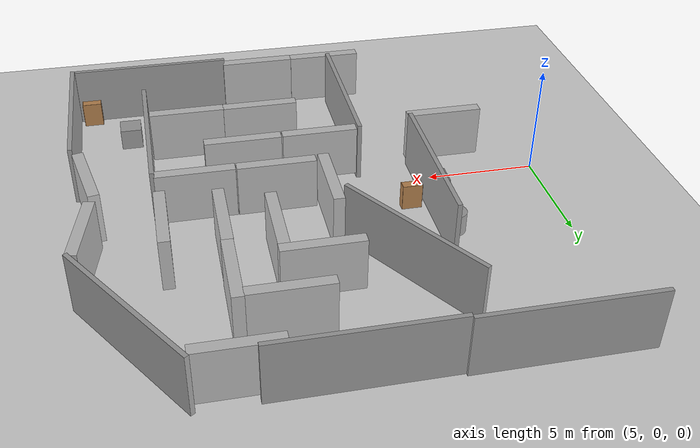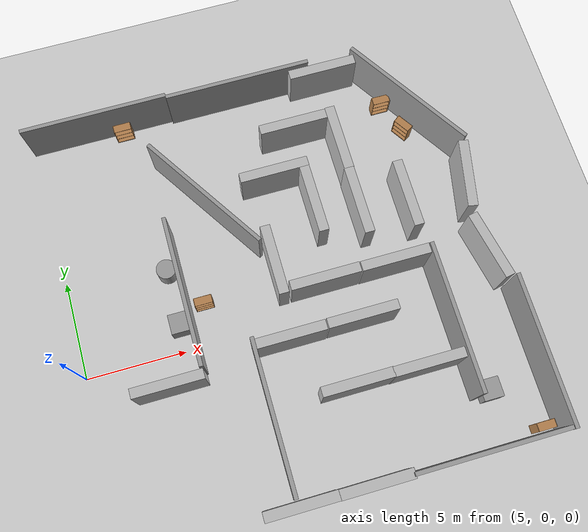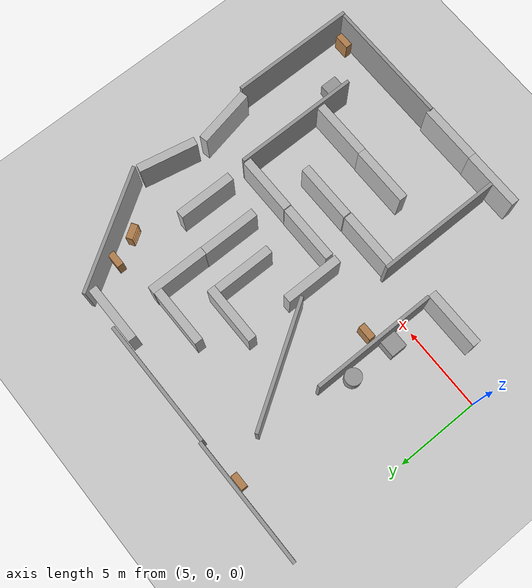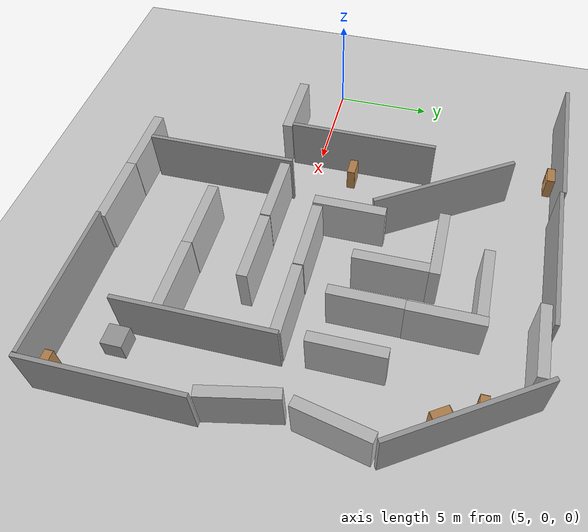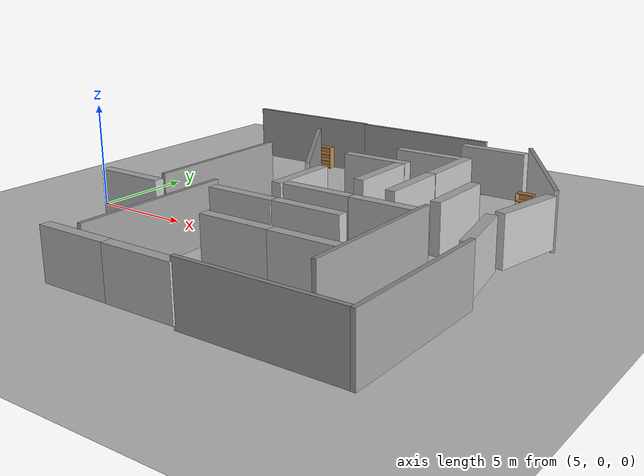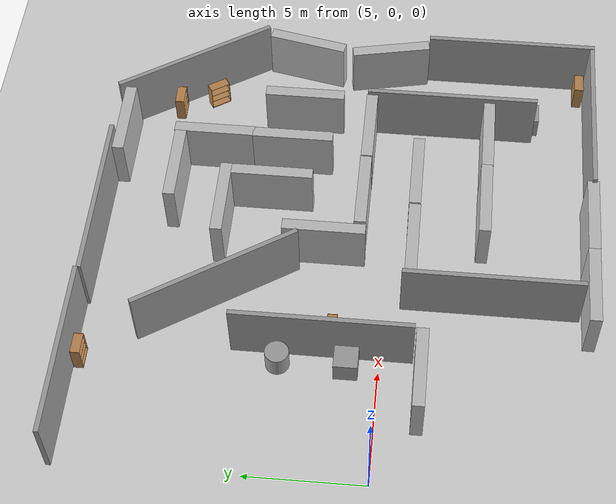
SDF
<sdf version="1.6">
 <world name="default">
  <model name="ground_plane">
   <static>1</static>
   <link name="link">
    <collision name="collision">
     <geometry><plane><normal>0 0 1</normal><size>100 100</size></plane></geometry>
     <surface><friction><ode><mu>100</mu><mu2>50</mu2></ode></friction></surface>
    </collision>
    <visual name="visual">
     <cast_shadows>0</cast_shadows>
     <geometry><plane><normal>0 0 1</normal><size>100 100</size></plane></geometry>
     <material>
      <script><uri>file://media/materials/scripts/gazebo.material</uri><name>Gazebo/Grey</name></script>
     </material>
    </visual>
   </link>
  </model>
  <model name="grey_wall_2">
   <static>1</static>
   <link name="link">
    <pose>0 0 1.4 0 -0 0</pose>
    <collision name="collision"><geometry><box><size>7.5 0.2 2.8</size></box></geometry></collision>
    <visual name="visual">
     <cast_shadows>0</cast_shadows>
     <geometry><box><size>7.5 0.2 2.8</size></box></geometry>
     <material>
      <script>
       <uri>model://grey_wall/materials/scripts</uri>
       <uri>model://grey_wall/materials/textures</uri>
       <name>vrc/grey_wall</name>
      </script>
     </material>
    </visual>
   </link>
   <pose>10.7049 2.36121 0 0 -0 1.57</pose>
  </model>
  <model name="unit_cylinder_0_0">
   <pose>10.1063 4.12187 0.5 0 -0 1.1e-05</pose>
   <link name="link">
    <inertial>
     <mass>1</mass>
     <inertia><ixx>0.145833</ixx><ixy>0</ixy><ixz>0</ixz><iyy>0.145833</iyy><iyz>0</iyz><izz>0.125</izz></inertia>
    </inertial>
    <collision name="collision">
     <geometry><cylinder><radius>0.5</radius><length>1</length></cylinder></geometry>
    </collision>
    <visual name="visual">
     <geometry><cylinder><radius>0.5</radius><length>1</length></cylinder></geometry>
     <material>
      <script><name>Gazebo/Grey</name><uri>file://media/materials/scripts/gazebo.material</uri></script>
     </material>
    </visual>
   </link>
  </model>
  <model name="unit_box_1_0">
   <pose>10.1038 1.31079 0.499995 0 1e-05 -0.000339</pose>
   <link name="link">
    <inertial>
     <mass>1</mass>
     <inertia>
      <ixx>0.166667</ixx>
      <ixy>0</ixy>
      <ixz>0</ixz>
      <iyy>0.166667</iyy>
      <iyz>0</iyz>
      <izz>0.166667</izz>
     </inertia>
    </inertial>
    <collision name="collision"><geometry><box><size>1 1 1</size></box></geometry></collision>
    <visual name="visual">
     <geometry><box><size>1 1 1</size></box></geometry>
     <material>
      <script><name>Gazebo/Grey</name><uri>file://media/materials/scripts/gazebo.material</uri></script>
     </material>
    </visual>
   </link>
  </model>
  <model name="mywall1_0_clone_clone">
   <static>1</static>
   <link name="link">
    <pose>0 0 1.4 0 -0 0</pose>
    <collision name="collision"><geometry><box><size>3.5 0.5 2.4</size></box></geometry></collision>
    <visual name="visual">
     <cast_shadows>0</cast_shadows>
     <geometry><box><size>3.5 0.5 2.4</size></box></geometry>
     <material>
      <script>
       <uri>model://mywall1/materials/scripts</uri>
       <uri>model://mywall1/materials/textures</uri>
       <name>vrc/mywall1</name>
      </script>
     </material>
    </visual>
   </link>
   <pose>13.4228 -8.52031 0 0 -0 0</pose>
  </model>
  <model name="grey_wall_5_clone">
   <static>1</static>
   <link name="link">
    <pose>0 0 1.4 0 -0 0</pose>
    <collision name="collision"><geometry><box><size>7.5 0.2 2.8</size></box></geometry></collision>
    <visual name="visual">
     <cast_shadows>0</cast_shadows>
     <geometry><box><size>7.5 0.2 2.8</size></box></geometry>
     <material>
      <script>
       <uri>model://grey_wall/materials/scripts</uri>
       <uri>model://grey_wall/materials/textures</uri>
       <name>vrc/grey_wall</name>
      </script>
     </material>
    </visual>
   </link>
   <pose>22.3475 -8.58584 0 0 -0 0</pose>
  </model>
  <model name="mywall0_2">
   <static>1</static>
   <link name="link">
    <pose>0 0 1.4 0 -0 0</pose>
    <collision name="collision"><geometry><box><size>3.5 0.5 2.4</size></box></geometry></collision>
    <visual name="visual">
     <cast_shadows>0</cast_shadows>
     <geometry><box><size>3.5 0.5 2.4</size></box></geometry>
     <material>
      <script>
       <uri>model://mywall0/materials/scripts</uri>
       <uri>model://mywall0/materials/textures</uri>
       <name>vrc/mywall0</name>
      </script>
     </material>
    </visual>
   </link>
   <pose>8.99712 -1.69173 0 0 -0 0</pose>
  </model>
  <model name="mywall0_6">
   <static>1</static>
   <link name="link">
    <pose>0 0 1.4 0 -0 0</pose>
    <collision name="collision"><geometry><box><size>3.5 0.5 2.4</size></box></geometry></collision>
    <visual name="visual">
     <cast_shadows>0</cast_shadows>
     <geometry><box><size>3.5 0.5 2.4</size></box></geometry>
     <material>
      <script>
       <uri>model://mywall0/materials/scripts</uri>
       <uri>model://mywall0/materials/textures</uri>
       <name>vrc/mywall0</name>
      </script>
     </material>
    </visual>
   </link>
   <pose>16.9181 -8.53522 0 0 -0 0</pose>
  </model>
  <model name="grey_wall_2_clone">
   <static>1</static>
   <link name="link">
    <pose>0 0 1.4 0 -0 0</pose>
    <collision name="collision"><geometry><box><size>7.5 0.2 2.8</size></box></geometry></collision>
    <visual name="visual">
     <cast_shadows>0</cast_shadows>
     <geometry><box><size>7.5 0.2 2.8</size></box></geometry>
     <material>
      <script>
       <uri>model://grey_wall/materials/scripts</uri>
       <uri>model://grey_wall/materials/textures</uri>
       <name>vrc/grey_wall</name>
      </script>
     </material>
    </visual>
   </link>
   <pose>13.2765 -4.44071 0 0 -0 1.57</pose>
  </model>
  <model name="grey_wall_0_clone">
   <static>1</static>
   <link name="link">
    <pose>0 0 1.4 0 -0 0</pose>
    <collision name="collision"><geometry><box><size>7.5 0.2 2.8</size></box></geometry></collision>
    <visual name="visual">
     <cast_shadows>0</cast_shadows>
     <geometry><box><size>7.5 0.2 2.8</size></box></geometry>
     <material>
      <script>
       <uri>model://grey_wall/materials/scripts</uri>
       <uri>model://grey_wall/materials/textures</uri>
       <name>vrc/grey_wall</name>
      </script>
     </material>
    </visual>
   </link>
   <pose>8.58019 12.5212 0 0 -0 0</pose>
  </model>
  <model name="bookshelf_1_clone">
   <static>1</static>
   <link name="link">
    <inertial><mass>1</mass></inertial>
    <collision name="back">
     <pose>0 0.005 0.6 0 -0 0</pose>
     <geometry><box><size>0.9 0.01 1.2</size></box></geometry>
    </collision>
    <visual name="visual1">
     <pose>0 0.005 0.6 0 -0 0</pose>
     <geometry><box><size>0.9 0.01 1.2</size></box></geometry>
     <material>
      <script><uri>file://media/materials/scripts/gazebo.material</uri><name>Gazebo/Wood</name></script>
     </material>
    </visual>
    <collision name="left_side">
     <pose>0.45 -0.195 0.6 0 -0 0</pose>
     <geometry><box><size>0.02 0.4 1.2</size></box></geometry>
    </collision>
    <visual name="visual2">
     <pose>0.45 -0.195 0.6 0 -0 0</pose>
     <geometry><box><size>0.02 0.4 1.2</size></box></geometry>
     <material>
      <script><uri>file://media/materials/scripts/gazebo.material</uri><name>Gazebo/Wood</name></script>
     </material>
    </visual>
    <collision name="right_side">
     <pose>-0.45 -0.195 0.6 0 -0 0</pose>
     <geometry><box><size>0.02 0.4 1.2</size></box></geometry>
    </collision>
    <visual name="visual3">
     <pose>-0.45 -0.195 0.6 0 -0 0</pose>
     <geometry><box><size>0.02 0.4 1.2</size></box></geometry>
     <material>
      <script><uri>file://media/materials/scripts/gazebo.material</uri><name>Gazebo/Wood</name></script>
     </material>
    </visual>
    <collision name="bottom">
     <pose>0 -0.195 0.03 0 -0 0</pose>
     <geometry><box><size>0.88 0.4 0.06</size></box></geometry>
    </collision>
    <visual name="visual4">
     <pose>0 -0.195 0.03 0 -0 0</pose>
     <geometry><box><size>0.88 0.4 0.06</size></box></geometry>
     <material>
      <script><uri>file://media/materials/scripts/gazebo.material</uri><name>Gazebo/Wood</name></script>
     </material>
    </visual>
    <collision name="top">
     <pose>0 -0.195 1.19 0 -0 0</pose>
     <geometry><box><size>0.88 0.4 0.02</size></box></geometry>
    </collision>
    <visual name="visual5">
     <pose>0 -0.195 1.19 0 -0 0</pose>
     <geometry><box><size>0.88 0.4 0.02</size></box></geometry>
     <material>
      <script><uri>file://media/materials/scripts/gazebo.material</uri><name>Gazebo/Wood</name></script>
     </material>
    </visual>
    <collision name="low_shelf">
     <pose>0 -0.195 0.43 0 -0 0</pose>
     <geometry><box><size>0.88 0.4 0.02</size></box></geometry>
    </collision>
    <visual name="visual6">
     <pose>0 -0.195 0.43 0 -0 0</pose>
     <geometry><box><size>0.88 0.4 0.02</size></box></geometry>
     <material>
      <script><uri>file://media/materials/scripts/gazebo.material</uri><name>Gazebo/Wood</name></script>
     </material>
    </visual>
    <collision name="high_shelf">
     <pose>0 -0.195 0.8 0 -0 0</pose>
     <geometry><box><size>0.88 0.4 0.02</size></box></geometry>
    </collision>
    <visual name="visual7">
     <pose>0 -0.195 0.8 0 -0 0</pose>
     <geometry><box><size>0.88 0.4 0.02</size></box></geometry>
     <material>
      <script><uri>file://media/materials/scripts/gazebo.material</uri><name>Gazebo/Wood</name></script>
     </material>
    </visual>
   </link>
   <pose>9.69205 12.3837 0 0 -0 0</pose>
  </model>
  <model name="grey_wall_3_clone">
   <static>1</static>
   <link name="link">
    <pose>0 0 1.4 0 -0 0</pose>
    <collision name="collision"><geometry><box><size>7.5 0.2 2.8</size></box></geometry></collision>
    <visual name="visual">
     <cast_shadows>0</cast_shadows>
     <geometry><box><size>7.5 0.2 2.8</size></box></geometry>
     <material>
      <script>
       <uri>model://grey_wall/materials/scripts</uri>
       <uri>model://grey_wall/materials/textures</uri>
       <name>vrc/grey_wall</name>
      </script>
     </material>
    </visual>
   </link>
   <pose>12.8853 6.90346 0 0 0 -1</pose>
  </model>
  <model name="mywall0_6_clone">
   <static>1</static>
   <link name="link">
    <pose>0 0 1.4 0 -0 0</pose>
    <collision name="collision"><geometry><box><size>3.5 0.5 2.4</size></box></geometry></collision>
    <visual name="visual">
     <cast_shadows>0</cast_shadows>
     <geometry><box><size>3.5 0.5 2.4</size></box></geometry>
     <material>
      <script>
       <uri>model://mywall0/materials/scripts</uri>
       <uri>model://mywall0/materials/textures</uri>
       <name>vrc/mywall0</name>
      </script>
     </material>
    </visual>
   </link>
   <pose>17.4405 1.20745 0 0 -0 0</pose>
  </model>
  <model name="mywall1_0_clone_clone_clone">
   <static>1</static>
   <link name="link">
    <pose>0 0 1.4 0 -0 0</pose>
    <collision name="collision"><geometry><box><size>3.5 0.5 2.4</size></box></geometry></collision>
    <visual name="visual">
     <cast_shadows>0</cast_shadows>
     <geometry><box><size>3.5 0.5 2.4</size></box></geometry>
     <material>
      <script>
       <uri>model://mywall1/materials/scripts</uri>
       <uri>model://mywall1/materials/textures</uri>
       <name>vrc/mywall1</name>
      </script>
     </material>
    </visual>
   </link>
   <pose>15.0685 -1.03907 0 0 -0 0</pose>
  </model>
  <model name="mywall0_6_clone_clone">
   <static>1</static>
   <link name="link">
    <pose>0 0 1.4 0 -0 0</pose>
    <collision name="collision"><geometry><box><size>3.5 0.5 2.4</size></box></geometry></collision>
    <visual name="visual">
     <cast_shadows>0</cast_shadows>
     <geometry><box><size>3.5 0.5 2.4</size></box></geometry>
     <material>
      <script>
       <uri>model://mywall0/materials/scripts</uri>
       <uri>model://mywall0/materials/textures</uri>
       <name>vrc/mywall0</name>
      </script>
     </material>
    </visual>
   </link>
   <pose>18.625 -1.02549 0 0 -0 0</pose>
  </model>
  <model name="mywall1_0_clone_clone_clone_clone">
   <static>1</static>
   <link name="link">
    <pose>0 0 1.4 0 -0 0</pose>
    <collision name="collision"><geometry><box><size>3.5 0.5 2.4</size></box></geometry></collision>
    <visual name="visual">
     <cast_shadows>0</cast_shadows>
     <geometry><box><size>3.5 0.5 2.4</size></box></geometry>
     <material>
      <script>
       <uri>model://mywall1/materials/scripts</uri>
       <uri>model://mywall1/materials/textures</uri>
       <name>vrc/mywall1</name>
      </script>
     </material>
    </visual>
   </link>
   <pose>20.9854 1.19106 0 0 -0 0</pose>
  </model>
  <model name="mywall1_clone_0">
   <static>1</static>
   <link name="link">
    <pose>0 0 1.4 0 -0 0</pose>
    <collision name="collision"><geometry><box><size>3.5 0.5 2.4</size></box></geometry></collision>
    <visual name="visual">
     <cast_shadows>0</cast_shadows>
     <geometry><box><size>3.5 0.5 2.4</size></box></geometry>
     <material>
      <script>
       <uri>model://mywall1/materials/scripts</uri>
       <uri>model://mywall1/materials/textures</uri>
       <name>vrc/mywall1</name>
      </script>
     </material>
    </visual>
   </link>
   <pose>15.3246 2.68996 0 0 -0 1.57</pose>
  </model>
  <model name="grey_wall_2_clone_clone">
   <static>1</static>
   <link name="link">
    <pose>0 0 1.4 0 -0 0</pose>
    <collision name="collision"><geometry><box><size>7.5 0.2 2.8</size></box></geometry></collision>
    <visual name="visual">
     <cast_shadows>0</cast_shadows>
     <geometry><box><size>7.5 0.2 2.8</size></box></geometry>
     <material>
      <script>
       <uri>model://grey_wall/materials/scripts</uri>
       <uri>model://grey_wall/materials/textures</uri>
       <name>vrc/grey_wall</name>
      </script>
     </material>
    </visual>
   </link>
   <pose>22.7944 -2.36366 0 0 -0 1.57</pose>
  </model>
  <model name="mywall0_6_clone_clone_0">
   <static>1</static>
   <link name="link">
    <pose>0 0 1.4 0 -0 0</pose>
    <collision name="collision"><geometry><box><size>3.5 0.5 2.4</size></box></geometry></collision>
    <visual name="visual">
     <cast_shadows>0</cast_shadows>
     <geometry><box><size>3.5 0.5 2.4</size></box></geometry>
     <material>
      <script>
       <uri>model://mywall0/materials/scripts</uri>
       <uri>model://mywall0/materials/textures</uri>
       <name>vrc/mywall0</name>
      </script>
     </material>
    </visual>
   </link>
   <pose>20.9009 -4.02874 0 0 -0 0</pose>
  </model>
  <model name="mywall1_0_clone_clone_clone_clone_clone">
   <static>1</static>
   <link name="link">
    <pose>0 0 1.4 0 -0 0</pose>
    <collision name="collision"><geometry><box><size>3.5 0.5 2.4</size></box></geometry></collision>
    <visual name="visual">
     <cast_shadows>0</cast_shadows>
     <geometry><box><size>3.5 0.5 2.4</size></box></geometry>
     <material>
      <script>
       <uri>model://mywall1/materials/scripts</uri>
       <uri>model://mywall1/materials/textures</uri>
       <name>vrc/mywall1</name>
      </script>
     </material>
    </visual>
   </link>
   <pose>17.4306 -4.00945 0 0 -0 0</pose>
  </model>
  <model name="grey_wall_2_clone_clone_0">
   <static>1</static>
   <link name="link">
    <pose>0 0 1.4 0 -0 0</pose>
    <collision name="collision"><geometry><box><size>7.5 0.2 2.8</size></box></geometry></collision>
    <visual name="visual">
     <cast_shadows>0</cast_shadows>
     <geometry><box><size>7.5 0.2 2.8</size></box></geometry>
     <material>
      <script>
       <uri>model://grey_wall/materials/scripts</uri>
       <uri>model://grey_wall/materials/textures</uri>
       <name>vrc/grey_wall</name>
      </script>
     </material>
    </visual>
   </link>
   <pose>26.2255 -4.94949 0 0 -0 1.57</pose>
  </model>
  <model name="mywall0_5_clone_0">
   <static>1</static>
   <link name="link">
    <pose>0 0 1.4 0 -0 0</pose>
    <collision name="collision"><geometry><box><size>3.5 0.5 2.4</size></box></geometry></collision>
    <visual name="visual">
     <cast_shadows>0</cast_shadows>
     <geometry><box><size>3.5 0.5 2.4</size></box></geometry>
     <material>
      <script>
       <uri>model://mywall0/materials/scripts</uri>
       <uri>model://mywall0/materials/textures</uri>
       <name>vrc/mywall0</name>
      </script>
     </material>
    </visual>
   </link>
   <pose>25.5788 0.542743 0 0 -0 1.77</pose>
  </model>
  <model name="mywall1_clone_0_clone">
   <static>1</static>
   <link name="link">
    <pose>0 0 1.4 0 -0 0</pose>
    <collision name="collision"><geometry><box><size>3.5 0.5 2.4</size></box></geometry></collision>
    <visual name="visual">
     <cast_shadows>0</cast_shadows>
     <geometry><box><size>3.5 0.5 2.4</size></box></geometry>
     <material>
      <script>
       <uri>model://mywall1/materials/scripts</uri>
       <uri>model://mywall1/materials/textures</uri>
       <name>vrc/mywall1</name>
      </script>
     </material>
    </visual>
   </link>
   <pose>22.5785 4.19149 0 0 -0 1.57</pose>
  </model>
  <model name="mywall0_5_clone_0_clone">
   <static>1</static>
   <link name="link">
    <pose>0 0 1.4 0 -0 0</pose>
    <collision name="collision"><geometry><box><size>3.5 0.5 2.4</size></box></geometry></collision>
    <visual name="visual">
     <cast_shadows>0</cast_shadows>
     <geometry><box><size>3.5 0.5 2.4</size></box></geometry>
     <material>
      <script>
       <uri>model://mywall0/materials/scripts</uri>
       <uri>model://mywall0/materials/textures</uri>
       <name>vrc/mywall0</name>
      </script>
     </material>
    </visual>
   </link>
   <pose>25.758 4.36449 0 0 -0 1.37</pose>
  </model>
  <model name="grey_wall_3_clone_clone">
   <static>1</static>
   <link name="link">
    <pose>0 0 1.4 0 -0 0</pose>
    <collision name="collision"><geometry><box><size>7.5 0.2 2.8</size></box></geometry></collision>
    <visual name="visual">
     <cast_shadows>0</cast_shadows>
     <geometry><box><size>7.5 0.2 2.8</size></box></geometry>
     <material>
      <script>
       <uri>model://grey_wall/materials/scripts</uri>
       <uri>model://grey_wall/materials/textures</uri>
       <name>vrc/grey_wall</name>
      </script>
     </material>
    </visual>
   </link>
   <pose>24.244 9.36168 0 0 0 -1</pose>
  </model>
  <model name="grey_wall_0_clone_clone">
   <static>1</static>
   <link name="link">
    <pose>0 0 1.4 0 -0 0</pose>
    <collision name="collision"><geometry><box><size>7.5 0.2 2.8</size></box></geometry></collision>
    <visual name="visual">
     <cast_shadows>0</cast_shadows>
     <geometry><box><size>7.5 0.2 2.8</size></box></geometry>
     <material>
      <script>
       <uri>model://grey_wall/materials/scripts</uri>
       <uri>model://grey_wall/materials/textures</uri>
       <name>vrc/grey_wall</name>
      </script>
     </material>
    </visual>
   </link>
   <pose>16.0729 12.403 0 0 -0 0</pose>
  </model>
  <model name="mywall1_0_clone_clone_clone_clone_clone_0">
   <static>1</static>
   <link name="link">
    <pose>0 0 1.4 0 -0 0</pose>
    <collision name="collision"><geometry><box><size>3.5 0.5 2.4</size></box></geometry></collision>
    <visual name="visual">
     <cast_shadows>0</cast_shadows>
     <geometry><box><size>3.5 0.5 2.4</size></box></geometry>
     <material>
      <script>
       <uri>model://mywall1/materials/scripts</uri>
       <uri>model://mywall1/materials/textures</uri>
       <name>vrc/mywall1</name>
      </script>
     </material>
    </visual>
   </link>
   <pose>20.4824 11.982 0 0 -0 0</pose>
  </model>
  <model name="mywall0_2_clone">
   <static>1</static>
   <link name="link">
    <pose>0 0 1.4 0 -0 0</pose>
    <collision name="collision"><geometry><box><size>3.5 0.5 2.4</size></box></geometry></collision>
    <visual name="visual">
     <cast_shadows>0</cast_shadows>
     <geometry><box><size>3.5 0.5 2.4</size></box></geometry>
     <material>
      <script>
       <uri>model://mywall0/materials/scripts</uri>
       <uri>model://mywall0/materials/textures</uri>
       <name>vrc/mywall0</name>
      </script>
     </material>
    </visual>
   </link>
   <pose>18.1992 9.39978 0 0 -0 0</pose>
  </model>
  <model name="mywall0_5_clone_clone">
   <static>1</static>
   <link name="link">
    <pose>0 0 1.4 0 -0 0</pose>
    <collision name="collision"><geometry><box><size>3.5 0.5 2.4</size></box></geometry></collision>
    <visual name="visual">
     <cast_shadows>0</cast_shadows>
     <geometry><box><size>3.5 0.5 2.4</size></box></geometry>
     <material>
      <script>
       <uri>model://mywall0/materials/scripts</uri>
       <uri>model://mywall0/materials/textures</uri>
       <name>vrc/mywall0</name>
      </script>
     </material>
    </visual>
   </link>
   <pose>20.1773 7.93264 0 0 -0 1.57</pose>
  </model>
  <model name="mywall0_2_clone_clone">
   <static>1</static>
   <link name="link">
    <pose>0 0 1.4 0 -0 0</pose>
    <collision name="collision"><geometry><box><size>3.5 0.5 2.4</size></box></geometry></collision>
    <visual name="visual">
     <cast_shadows>0</cast_shadows>
     <geometry><box><size>3.5 0.5 2.4</size></box></geometry>
     <material>
      <script>
       <uri>model://mywall0/materials/scripts</uri>
       <uri>model://mywall0/materials/textures</uri>
       <name>vrc/mywall0</name>
      </script>
     </material>
    </visual>
   </link>
   <pose>16.5545 7.1584 0 0 -0 0</pose>
  </model>
  <model name="mywall0_5_clone_clone_clone">
   <static>1</static>
   <link name="link">
    <pose>0 0 1.4 0 -0 0</pose>
    <collision name="collision"><geometry><box><size>3.5 0.5 2.4</size></box></geometry></collision>
    <visual name="visual">
     <cast_shadows>0</cast_shadows>
     <geometry><box><size>3.5 0.5 2.4</size></box></geometry>
     <material>
      <script>
       <uri>model://mywall0/materials/scripts</uri>
       <uri>model://mywall0/materials/textures</uri>
       <name>vrc/mywall0</name>
      </script>
     </material>
    </visual>
   </link>
   <pose>18.0447 5.16553 0 0 -0 1.57</pose>
  </model>
  <model name="mywall1_clone_0_clone_clone">
   <static>1</static>
   <link name="link">
    <pose>0 0 1.4 0 -0 0</pose>
    <collision name="collision"><geometry><box><size>3.5 0.5 2.4</size></box></geometry></collision>
    <visual name="visual">
     <cast_shadows>0</cast_shadows>
     <geometry><box><size>3.5 0.5 2.4</size></box></geometry>
     <material>
      <script>
       <uri>model://mywall1/materials/scripts</uri>
       <uri>model://mywall1/materials/textures</uri>
       <name>vrc/mywall1</name>
      </script>
     </material>
    </visual>
   </link>
   <pose>20.156 4.49227 0 0 -0 1.57</pose>
  </model>
  <model name="unit_box_1">
   <pose>23.627 -5.87436 0.499995 -1e-05 0 0</pose>
   <link name="link">
    <inertial>
     <mass>1</mass>
     <inertia>
      <ixx>0.166667</ixx>
      <ixy>0</ixy>
      <ixz>0</ixz>
      <iyy>0.166667</iyy>
      <iyz>0</iyz>
      <izz>0.166667</izz>
     </inertia>
    </inertial>
    <collision name="collision"><geometry><box><size>1 1 1</size></box></geometry></collision>
    <visual name="visual">
     <geometry><box><size>1 1 1</size></box></geometry>
     <material>
      <script><name>Gazebo/Grey</name><uri>file://media/materials/scripts/gazebo.material</uri></script>
     </material>
    </visual>
   </link>
  </model>
  <model name="bookshelf_1_clone_0">
   <static>1</static>
   <link name="link">
    <inertial><mass>1</mass></inertial>
    <collision name="back">
     <pose>0 0.005 0.6 0 -0 0</pose>
     <geometry><box><size>0.9 0.01 1.2</size></box></geometry>
    </collision>
    <visual name="visual1">
     <pose>0 0.005 0.6 0 -0 0</pose>
     <geometry><box><size>0.9 0.01 1.2</size></box></geometry>
     <material>
      <script><uri>file://media/materials/scripts/gazebo.material</uri><name>Gazebo/Wood</name></script>
     </material>
    </visual>
    <collision name="left_side">
     <pose>0.45 -0.195 0.6 0 -0 0</pose>
     <geometry><box><size>0.02 0.4 1.2</size></box></geometry>
    </collision>
    <visual name="visual2">
     <pose>0.45 -0.195 0.6 0 -0 0</pose>
     <geometry><box><size>0.02 0.4 1.2</size></box></geometry>
     <material>
      <script><uri>file://media/materials/scripts/gazebo.material</uri><name>Gazebo/Wood</name></script>
     </material>
    </visual>
    <collision name="right_side">
     <pose>-0.45 -0.195 0.6 0 -0 0</pose>
     <geometry><box><size>0.02 0.4 1.2</size></box></geometry>
    </collision>
    <visual name="visual3">
     <pose>-0.45 -0.195 0.6 0 -0 0</pose>
     <geometry><box><size>0.02 0.4 1.2</size></box></geometry>
     <material>
      <script><uri>file://media/materials/scripts/gazebo.material</uri><name>Gazebo/Wood</name></script>
     </material>
    </visual>
    <collision name="bottom">
     <pose>0 -0.195 0.03 0 -0 0</pose>
     <geometry><box><size>0.88 0.4 0.06</size></box></geometry>
    </collision>
    <visual name="visual4">
     <pose>0 -0.195 0.03 0 -0 0</pose>
     <geometry><box><size>0.88 0.4 0.06</size></box></geometry>
     <material>
      <script><uri>file://media/materials/scripts/gazebo.material</uri><name>Gazebo/Wood</name></script>
     </material>
    </visual>
    <collision name="top">
     <pose>0 -0.195 1.19 0 -0 0</pose>
     <geometry><box><size>0.88 0.4 0.02</size></box></geometry>
    </collision>
    <visual name="visual5">
     <pose>0 -0.195 1.19 0 -0 0</pose>
     <geometry><box><size>0.88 0.4 0.02</size></box></geometry>
     <material>
      <script><uri>file://media/materials/scripts/gazebo.material</uri><name>Gazebo/Wood</name></script>
     </material>
    </visual>
    <collision name="low_shelf">
     <pose>0 -0.195 0.43 0 -0 0</pose>
     <geometry><box><size>0.88 0.4 0.02</size></box></geometry>
    </collision>
    <visual name="visual6">
     <pose>0 -0.195 0.43 0 -0 0</pose>
     <geometry><box><size>0.88 0.4 0.02</size></box></geometry>
     <material>
      <script><uri>file://media/materials/scripts/gazebo.material</uri><name>Gazebo/Wood</name></script>
     </material>
    </visual>
    <collision name="high_shelf">
     <pose>0 -0.195 0.8 0 -0 0</pose>
     <geometry><box><size>0.88 0.4 0.02</size></box></geometry>
    </collision>
    <visual name="visual7">
     <pose>0 -0.195 0.8 0 -0 0</pose>
     <geometry><box><size>0.88 0.4 0.02</size></box></geometry>
     <material>
      <script><uri>file://media/materials/scripts/gazebo.material</uri><name>Gazebo/Wood</name></script>
     </material>
    </visual>
   </link>
   <pose>25.4793 -8.00663 0 0 -0 0</pose>
  </model>
  <model name="bookshelf_2_clone">
   <static>1</static>
   <link name="link">
    <inertial><mass>1</mass></inertial>
    <collision name="back">
     <pose>0 0.005 0.6 0 -0 0</pose>
     <geometry><box><size>0.9 0.01 1.2</size></box></geometry>
    </collision>
    <visual name="visual1">
     <pose>0 0.005 0.6 0 -0 0</pose>
     <geometry><box><size>0.9 0.01 1.2</size></box></geometry>
     <material>
      <script><uri>file://media/materials/scripts/gazebo.material</uri><name>Gazebo/Wood</name></script>
     </material>
    </visual>
    <collision name="left_side">
     <pose>0.45 -0.195 0.6 0 -0 0</pose>
     <geometry><box><size>0.02 0.4 1.2</size></box></geometry>
    </collision>
    <visual name="visual2">
     <pose>0.45 -0.195 0.6 0 -0 0</pose>
     <geometry><box><size>0.02 0.4 1.2</size></box></geometry>
     <material>
      <script><uri>file://media/materials/scripts/gazebo.material</uri><name>Gazebo/Wood</name></script>
     </material>
    </visual>
    <collision name="right_side">
     <pose>-0.45 -0.195 0.6 0 -0 0</pose>
     <geometry><box><size>0.02 0.4 1.2</size></box></geometry>
    </collision>
    <visual name="visual3">
     <pose>-0.45 -0.195 0.6 0 -0 0</pose>
     <geometry><box><size>0.02 0.4 1.2</size></box></geometry>
     <material>
      <script><uri>file://media/materials/scripts/gazebo.material</uri><name>Gazebo/Wood</name></script>
     </material>
    </visual>
    <collision name="bottom">
     <pose>0 -0.195 0.03 0 -0 0</pose>
     <geometry><box><size>0.88 0.4 0.06</size></box></geometry>
    </collision>
    <visual name="visual4">
     <pose>0 -0.195 0.03 0 -0 0</pose>
     <geometry><box><size>0.88 0.4 0.06</size></box></geometry>
     <material>
      <script><uri>file://media/materials/scripts/gazebo.material</uri><name>Gazebo/Wood</name></script>
     </material>
    </visual>
    <collision name="top">
     <pose>0 -0.195 1.19 0 -0 0</pose>
     <geometry><box><size>0.88 0.4 0.02</size></box></geometry>
    </collision>
    <visual name="visual5">
     <pose>0 -0.195 1.19 0 -0 0</pose>
     <geometry><box><size>0.88 0.4 0.02</size></box></geometry>
     <material>
      <script><uri>file://media/materials/scripts/gazebo.material</uri><name>Gazebo/Wood</name></script>
     </material>
    </visual>
    <collision name="low_shelf">
     <pose>0 -0.195 0.43 0 -0 0</pose>
     <geometry><box><size>0.88 0.4 0.02</size></box></geometry>
    </collision>
    <visual name="visual6">
     <pose>0 -0.195 0.43 0 -0 0</pose>
     <geometry><box><size>0.88 0.4 0.02</size></box></geometry>
     <material>
      <script><uri>file://media/materials/scripts/gazebo.material</uri><name>Gazebo/Wood</name></script>
     </material>
    </visual>
    <collision name="high_shelf">
     <pose>0 -0.195 0.8 0 -0 0</pose>
     <geometry><box><size>0.88 0.4 0.02</size></box></geometry>
    </collision>
    <visual name="visual7">
     <pose>0 -0.195 0.8 0 -0 0</pose>
     <geometry><box><size>0.88 0.4 0.02</size></box></geometry>
     <material>
      <script><uri>file://media/materials/scripts/gazebo.material</uri><name>Gazebo/Wood</name></script>
     </material>
    </visual>
   </link>
   <pose>11.4882 2.21034 0 0 -0 0</pose>
  </model>
  <model name="bookshelf_1_clone_1">
   <static>1</static>
   <link name="link">
    <inertial><mass>1</mass></inertial>
    <collision name="back">
     <pose>0 0.005 0.6 0 -0 0</pose>
     <geometry><box><size>0.9 0.01 1.2</size></box></geometry>
    </collision>
    <visual name="visual1">
     <pose>0 0.005 0.6 0 -0 0</pose>
     <geometry><box><size>0.9 0.01 1.2</size></box></geometry>
     <material>
      <script><uri>file://media/materials/scripts/gazebo.material</uri><name>Gazebo/Wood</name></script>
     </material>
    </visual>
    <collision name="left_side">
     <pose>0.45 -0.195 0.6 0 -0 0</pose>
     <geometry><box><size>0.02 0.4 1.2</size></box></geometry>
    </collision>
    <visual name="visual2">
     <pose>0.45 -0.195 0.6 0 -0 0</pose>
     <geometry><box><size>0.02 0.4 1.2</size></box></geometry>
     <material>
      <script><uri>file://media/materials/scripts/gazebo.material</uri><name>Gazebo/Wood</name></script>
     </material>
    </visual>
    <collision name="right_side">
     <pose>-0.45 -0.195 0.6 0 -0 0</pose>
     <geometry><box><size>0.02 0.4 1.2</size></box></geometry>
    </collision>
    <visual name="visual3">
     <pose>-0.45 -0.195 0.6 0 -0 0</pose>
     <geometry><box><size>0.02 0.4 1.2</size></box></geometry>
     <material>
      <script><uri>file://media/materials/scripts/gazebo.material</uri><name>Gazebo/Wood</name></script>
     </material>
    </visual>
    <collision name="bottom">
     <pose>0 -0.195 0.03 0 -0 0</pose>
     <geometry><box><size>0.88 0.4 0.06</size></box></geometry>
    </collision>
    <visual name="visual4">
     <pose>0 -0.195 0.03 0 -0 0</pose>
     <geometry><box><size>0.88 0.4 0.06</size></box></geometry>
     <material>
      <script><uri>file://media/materials/scripts/gazebo.material</uri><name>Gazebo/Wood</name></script>
     </material>
    </visual>
    <collision name="top">
     <pose>0 -0.195 1.19 0 -0 0</pose>
     <geometry><box><size>0.88 0.4 0.02</size></box></geometry>
    </collision>
    <visual name="visual5">
     <pose>0 -0.195 1.19 0 -0 0</pose>
     <geometry><box><size>0.88 0.4 0.02</size></box></geometry>
     <material>
      <script><uri>file://media/materials/scripts/gazebo.material</uri><name>Gazebo/Wood</name></script>
     </material>
    </visual>
    <collision name="low_shelf">
     <pose>0 -0.195 0.43 0 -0 0</pose>
     <geometry><box><size>0.88 0.4 0.02</size></box></geometry>
    </collision>
    <visual name="visual6">
     <pose>0 -0.195 0.43 0 -0 0</pose>
     <geometry><box><size>0.88 0.4 0.02</size></box></geometry>
     <material>
      <script><uri>file://media/materials/scripts/gazebo.material</uri><name>Gazebo/Wood</name></script>
     </material>
    </visual>
    <collision name="high_shelf">
     <pose>0 -0.195 0.8 0 -0 0</pose>
     <geometry><box><size>0.88 0.4 0.02</size></box></geometry>
    </collision>
    <visual name="visual7">
     <pose>0 -0.195 0.8 0 -0 0</pose>
     <geometry><box><size>0.88 0.4 0.02</size></box></geometry>
     <material>
      <script><uri>file://media/materials/scripts/gazebo.material</uri><name>Gazebo/Wood</name></script>
     </material>
    </visual>
   </link>
   <pose>24.0937 8.48643 0 0 0 -1</pose>
  </model>
  <model name="bookshelf_1_clone_1_clone">
   <static>1</static>
   <link name="link">
    <inertial><mass>1</mass></inertial>
    <collision name="back">
     <pose>0 0.005 0.6 0 -0 0</pose>
     <geometry><box><size>0.9 0.01 1.2</size></box></geometry>
    </collision>
    <visual name="visual1">
     <pose>0 0.005 0.6 0 -0 0</pose>
     <geometry><box><size>0.9 0.01 1.2</size></box></geometry>
     <material>
      <script><uri>file://media/materials/scripts/gazebo.material</uri><name>Gazebo/Wood</name></script>
     </material>
    </visual>
    <collision name="left_side">
     <pose>0.45 -0.195 0.6 0 -0 0</pose>
     <geometry><box><size>0.02 0.4 1.2</size></box></geometry>
    </collision>
    <visual name="visual2">
     <pose>0.45 -0.195 0.6 0 -0 0</pose>
     <geometry><box><size>0.02 0.4 1.2</size></box></geometry>
     <material>
      <script><uri>file://media/materials/scripts/gazebo.material</uri><name>Gazebo/Wood</name></script>
     </material>
    </visual>
    <collision name="right_side">
     <pose>-0.45 -0.195 0.6 0 -0 0</pose>
     <geometry><box><size>0.02 0.4 1.2</size></box></geometry>
    </collision>
    <visual name="visual3">
     <pose>-0.45 -0.195 0.6 0 -0 0</pose>
     <geometry><box><size>0.02 0.4 1.2</size></box></geometry>
     <material>
      <script><uri>file://media/materials/scripts/gazebo.material</uri><name>Gazebo/Wood</name></script>
     </material>
    </visual>
    <collision name="bottom">
     <pose>0 -0.195 0.03 0 -0 0</pose>
     <geometry><box><size>0.88 0.4 0.06</size></box></geometry>
    </collision>
    <visual name="visual4">
     <pose>0 -0.195 0.03 0 -0 0</pose>
     <geometry><box><size>0.88 0.4 0.06</size></box></geometry>
     <material>
      <script><uri>file://media/materials/scripts/gazebo.material</uri><name>Gazebo/Wood</name></script>
     </material>
    </visual>
    <collision name="top">
     <pose>0 -0.195 1.19 0 -0 0</pose>
     <geometry><box><size>0.88 0.4 0.02</size></box></geometry>
    </collision>
    <visual name="visual5">
     <pose>0 -0.195 1.19 0 -0 0</pose>
     <geometry><box><size>0.88 0.4 0.02</size></box></geometry>
     <material>
      <script><uri>file://media/materials/scripts/gazebo.material</uri><name>Gazebo/Wood</name></script>
     </material>
    </visual>
    <collision name="low_shelf">
     <pose>0 -0.195 0.43 0 -0 0</pose>
     <geometry><box><size>0.88 0.4 0.02</size></box></geometry>
    </collision>
    <visual name="visual6">
     <pose>0 -0.195 0.43 0 -0 0</pose>
     <geometry><box><size>0.88 0.4 0.02</size></box></geometry>
     <material>
      <script><uri>file://media/materials/scripts/gazebo.material</uri><name>Gazebo/Wood</name></script>
     </material>
    </visual>
    <collision name="high_shelf">
     <pose>0 -0.195 0.8 0 -0 0</pose>
     <geometry><box><size>0.88 0.4 0.02</size></box></geometry>
    </collision>
    <visual name="visual7">
     <pose>0 -0.195 0.8 0 -0 0</pose>
     <geometry><box><size>0.88 0.4 0.02</size></box></geometry>
     <material>
      <script><uri>file://media/materials/scripts/gazebo.material</uri><name>Gazebo/Wood</name></script>
     </material>
    </visual>
   </link>
   <pose>23.2123 10.2226 0 0 -0 0</pose>
  </model>
 </world>
</sdf>
